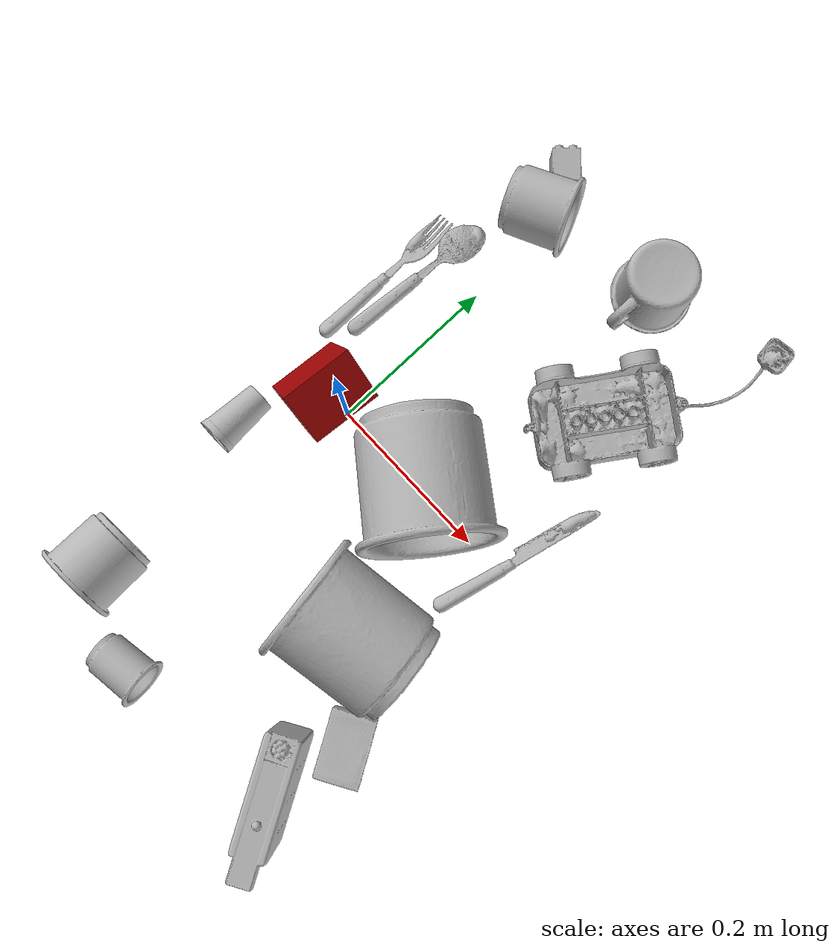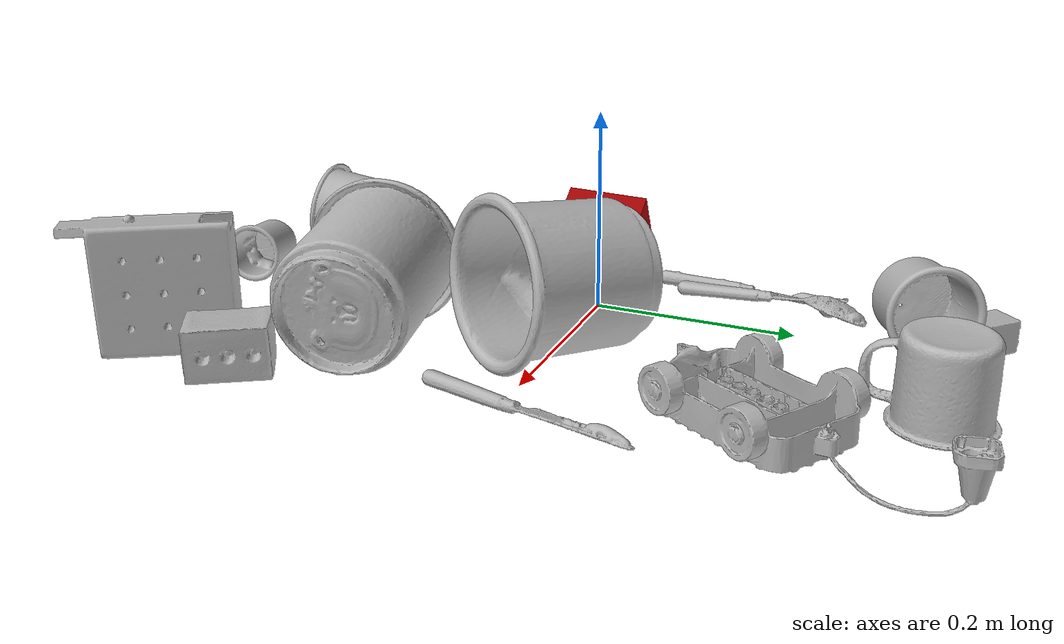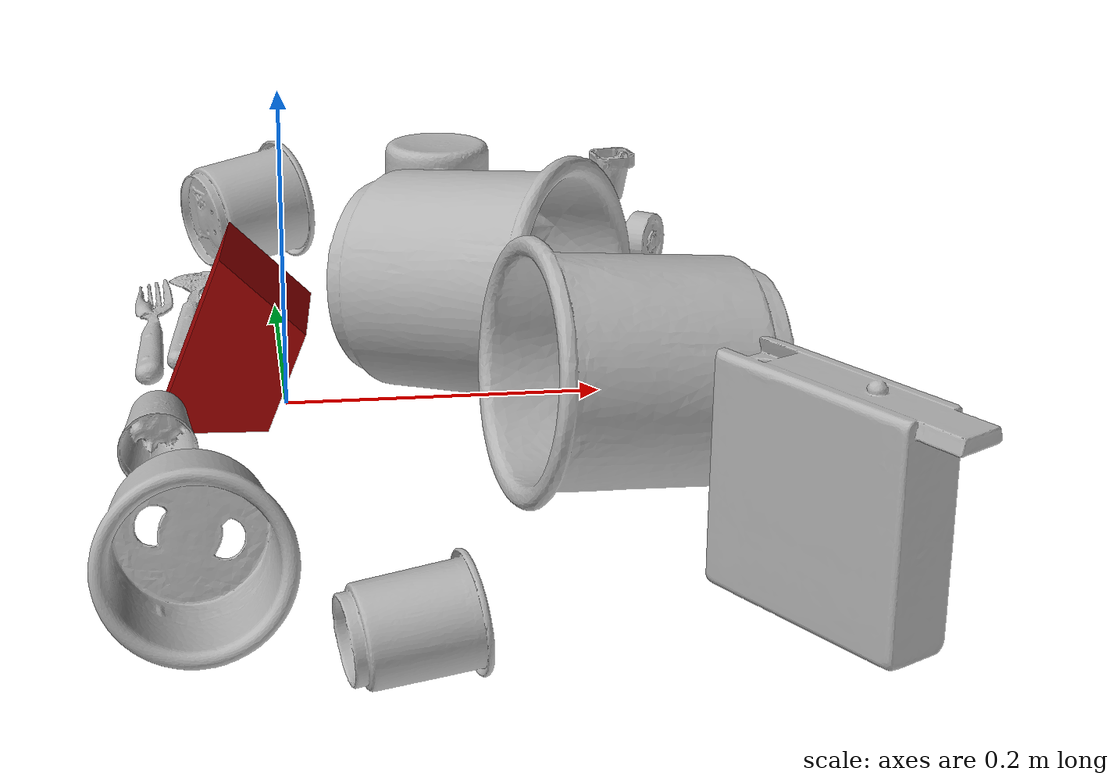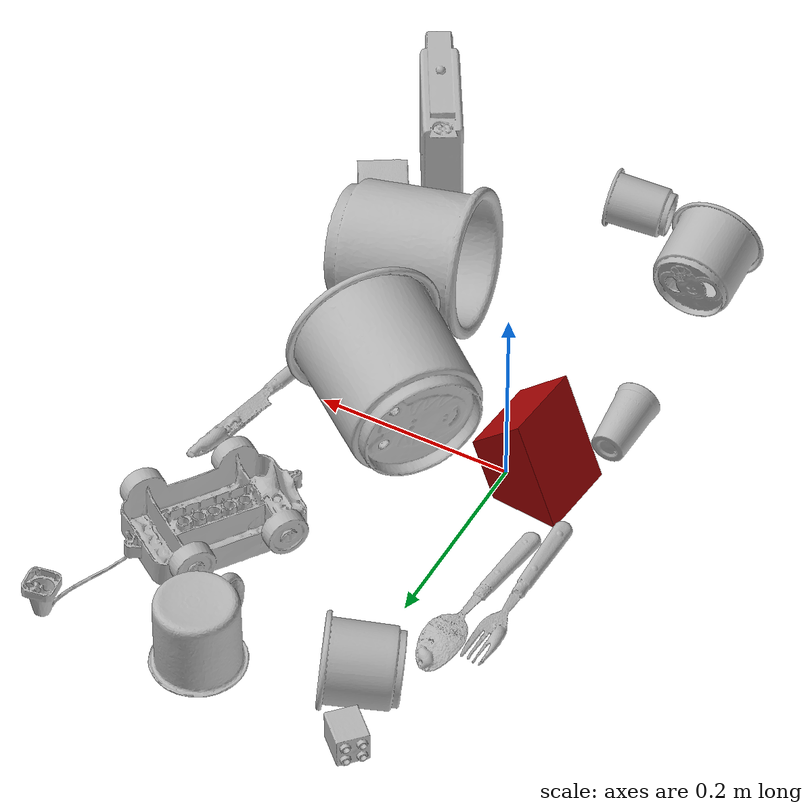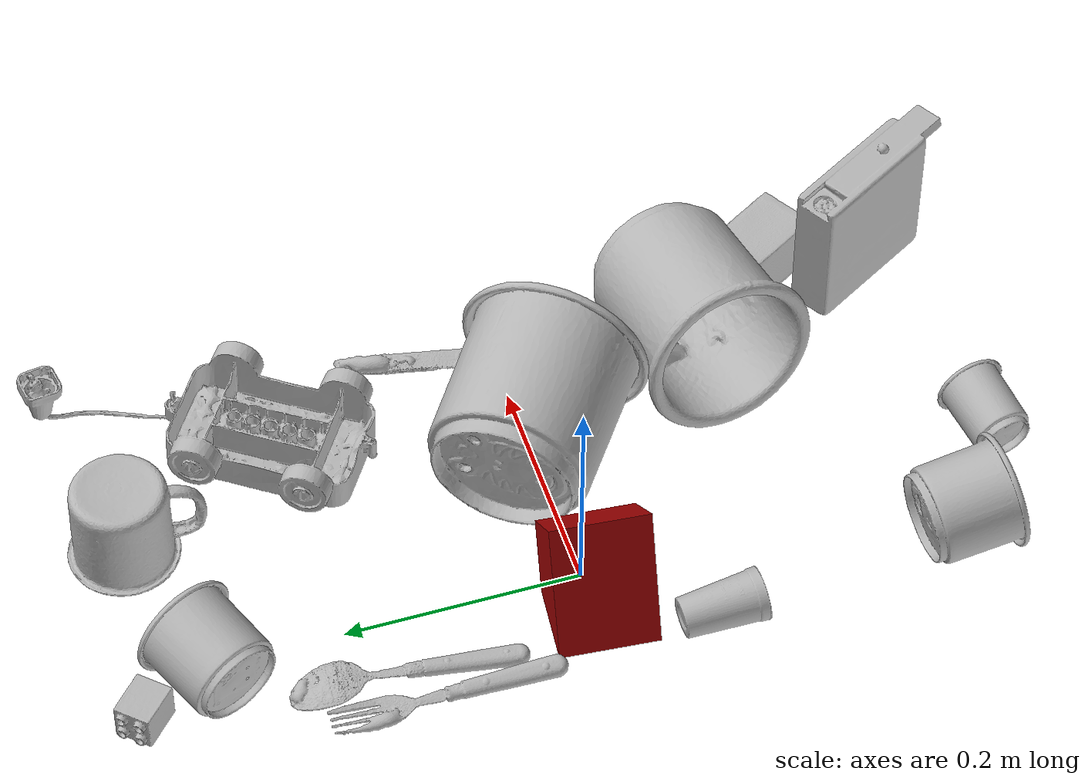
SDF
<sdf version="1.4">
  <world name="default">
    <light name="light1" type="point">
      <pose>0 0 1 0 0 0</pose>
      <diffuse>3 3 3 1</diffuse>
      <specular>3 3 3 1</specular>
    </light>
    <light name="light2" type="point">
      <pose>0 0.5 2 0 0 0</pose>
      <diffuse>1 1 1 1</diffuse>
      <specular>1 1 1 1</specular>
    </light>
    <light name="light3" type="point">
      <pose>0 0.5 2 0 0 0</pose>
      <diffuse>3 3 3 1</diffuse>
      <specular>3 3 3 1</specular>
    </light>
    <scene>
      <ambient>0.7 0.7 0.7</ambient>
    </scene>
    <model name="cup1">
      <link name="link_cup1">
        <collision name="default">
          <geometry>
            <mesh>
              <uri>model://i_cups/collision_meshes/collision.obj</uri>
              <scale>1.0 1.0 1.0</scale>
            </mesh>
          </geometry>
          <surface>
            <friction>
              <ode>
                <mu>0.5</mu>
                <mu2>0.5</mu2>
              </ode>
            </friction>
          <contact>
        <ode>
            <max_vel>0</max_vel>
            <min_depth>0.0001</min_depth>
            <kp>1e8</kp>
        </ode>
    </contact></surface>
        </collision>
        <visual name="default">
          <geometry>
            <mesh>
              <uri>model://i_cups/visual_meshes/visual.dae</uri>
              <scale>1.0 1.0 1.0</scale>
            </mesh>
          </geometry>
        </visual>
        <inertial>
          <mass>0.06118306145071983</mass>
          <pose>0.00011240330786677077 0.00016797454736661166 -0.0008579033892601728 -0.02898356853937009 -0.0398729445813228 -0.3459020996231002</pose>
          <inertia>
            <ixx>8.470886e-05</ixx>
            <iyy>8.5455235e-05</iyy>
            <izz>9.467588e-05</izz>
            <ixy>0</ixy>
            <ixz>0</ixz>
            <iyz>0</iyz>
          </inertia>
        </inertial>
      </link>
      <pose>-0.05655854195356369 -0.30815786123275757 0.04489682614803314 -1.432042043540996 -0.5665404648665953 3.109664526809763</pose>
    </model>
    <model name="silverware1">
      <link name="link_silverware1">
        <collision name="default">
          <geometry>
            <mesh>
              <uri>model://fork/collision_meshes/collision.obj</uri>
              <scale>1.0 1.0 1.0</scale>
            </mesh>
          </geometry>
          <surface>
            <friction>
              <ode>
                <mu>0.5</mu>
                <mu2>0.5</mu2>
              </ode>
            </friction>
          <contact>
        <ode>
            <max_vel>0</max_vel>
            <min_depth>0.0001</min_depth>
            <kp>1e8</kp>
        </ode>
    </contact></surface>
        </collision>
        <visual name="default">
          <geometry>
            <mesh>
              <uri>model://fork/visual_meshes/visual.dae</uri>
              <scale>1.0 1.0 1.0</scale>
            </mesh>
          </geometry>
        </visual>
        <inertial>
          <mass>0.031184576451778412</mass>
          <pose>-0.02957005426287651 0.00046588247641921043 0.0003218861820641905 -0.013551007459636681 -0.010977840933376642 0.014453907264632249</pose>
          <inertia>
            <ixx>1.0931959e-06</ixx>
            <iyy>8.1413935e-05</iyy>
            <izz>8.1902916e-05</izz>
            <ixy>0</ixy>
            <ixz>0</ixz>
            <iyz>0</iyz>
          </inertia>
        </inertial>
      </link>
      <pose>-0.08568906784057617 0.13750293850898743 0.005719705484807491 -0.1831390445326392 0.024721662242252387 1.5654490108577968</pose>
    </model>
    <model name="cup2">
      <link name="link_cup2">
        <collision name="default">
          <geometry>
            <mesh>
              <uri>model://cup_small/collision_meshes/collision.obj</uri>
              <scale>1.0 1.0 1.0</scale>
            </mesh>
          </geometry>
          <surface>
            <friction>
              <ode>
                <mu>0.5</mu>
                <mu2>0.5</mu2>
              </ode>
            </friction>
          <contact>
        <ode>
            <max_vel>0</max_vel>
            <min_depth>0.0001</min_depth>
            <kp>1e8</kp>
        </ode>
    </contact></surface>
        </collision>
        <visual name="default">
          <geometry>
            <mesh>
              <uri>model://cup_small/visual_meshes/visual.dae</uri>
              <scale>1.0 1.0 1.0</scale>
            </mesh>
          </geometry>
        </visual>
        <inertial>
          <mass>0.03407767415046692</mass>
          <pose>0.0001048250705935061 -0.00033778452780097723 -0.010742825455963612 -0.011493231776776816 -0.015280154496379641 -0.5058119732839097</pose>
          <inertia>
            <ixx>2.0064415e-05</ixx>
            <iyy>2.0167918e-05</iyy>
            <izz>9.059144e-06</izz>
            <ixy>0</ixy>
            <ixz>0</ixz>
            <iyz>0</iyz>
          </inertia>
        </inertial>
      </link>
      <pose>-0.0775802731513977 -0.09374670684337616 0.01956838369369507 -1.4753663216187263 0.3986207828163875 -3.0883032248373725</pose>
    </model>
    <model name="silverware2">
      <link name="link_silverware2">
        <collision name="default">
          <geometry>
            <mesh>
              <uri>model://spoon/collision_meshes/collision.obj</uri>
              <scale>1.0 1.0 1.0</scale>
            </mesh>
          </geometry>
          <surface>
            <friction>
              <ode>
                <mu>0.5</mu>
                <mu2>0.5</mu2>
              </ode>
            </friction>
          <contact>
        <ode>
            <max_vel>0</max_vel>
            <min_depth>0.0001</min_depth>
            <kp>1e8</kp>
        </ode>
    </contact></surface>
        </collision>
        <visual name="default">
          <geometry>
            <mesh>
              <uri>model://spoon/visual_meshes/visual.dae</uri>
              <scale>1.0 1.0 1.0</scale>
            </mesh>
          </geometry>
        </visual>
        <inertial>
          <mass>0.016614587977528572</mass>
          <pose>-0.005526317749172449 -0.0016034182626754045 -0.0007271657232195139 0.03521671066550848 -0.039065848782153245 0.0061506117821598484</pose>
          <inertia>
            <ixx>9.241303e-07</ixx>
            <iyy>6.321795e-05</iyy>
            <izz>6.367369e-05</izz>
            <ixy>0</ixy>
            <ixz>0</ixz>
            <iyz>0</iyz>
          </inertia>
        </inertial>
      </link>
      <pose>-0.057077206671237946 0.16295504570007324 0.010132850147783756 3.1052816832024575 -0.06198914542724366 1.495487524220881</pose>
    </model>
    <model name="cup3">
      <link name="link_cup3">
        <collision name="default">
          <geometry>
            <mesh>
              <uri>model://mug/collision_meshes/collision.obj</uri>
              <scale>1.0 1.0 1.0</scale>
            </mesh>
          </geometry>
          <surface>
            <friction>
              <ode>
                <mu>0.5</mu>
                <mu2>0.5</mu2>
              </ode>
            </friction>
          <contact>
        <ode>
            <max_vel>0</max_vel>
            <min_depth>0.0001</min_depth>
            <kp>1e8</kp>
        </ode>
    </contact></surface>
        </collision>
        <visual name="default">
          <geometry>
            <mesh>
              <uri>model://mug/visual_meshes/visual.dae</uri>
              <scale>1.0 1.0 1.0</scale>
            </mesh>
          </geometry>
        </visual>
        <inertial>
          <mass>0.2187051922082901</mass>
          <pose>0.009571668691933155 0.0008143252925947309 -0.0109473317861557 -0.1298317614392908 0.08737757629698793 0.05507296169044089</pose>
          <inertia>
            <ixx>0.00021724429</ixx>
            <iyy>0.00024264908</iyy>
            <izz>0.00028062687</izz>
            <ixy>0</ixy>
            <ixz>0</ixz>
            <iyz>0</iyz>
          </inertia>
        </inertial>
      </link>
      <pose>0.1335987150669098 0.33646368980407715 0.04095800966024399 3.141592641115866 -5.995638626187111e-07 1.5377097831086477</pose>
    </model>
    <model name="silverware3">
      <link name="link_silverware3">
        <collision name="default">
          <geometry>
            <mesh>
              <uri>model://knife/collision_meshes/collision.obj</uri>
              <scale>1.0 1.0 1.0</scale>
            </mesh>
          </geometry>
          <surface>
            <friction>
              <ode>
                <mu>0.5</mu>
                <mu2>0.5</mu2>
              </ode>
            </friction>
          <contact>
        <ode>
            <max_vel>0</max_vel>
            <min_depth>0.0001</min_depth>
            <kp>1e8</kp>
        </ode>
    </contact></surface>
        </collision>
        <visual name="default">
          <geometry>
            <mesh>
              <uri>model://knife/visual_meshes/visual.dae</uri>
              <scale>1.0 1.0 1.0</scale>
            </mesh>
          </geometry>
        </visual>
        <inertial>
          <mass>0.02527560666203499</mass>
          <pose>-0.02378525398671627 0.0015275124460458755 5.062016498413868e-05 0.07305987488321217 0.01724841707462807 -0.007409821427235137</pose>
          <inertia>
            <ixx>7.174241e-07</ixx>
            <iyy>9.710476e-05</iyy>
            <izz>9.733581e-05</izz>
            <ixy>0</ixy>
            <ixz>0</ixz>
            <iyz>0</iyz>
          </inertia>
        </inertial>
      </link>
      <pose>0.24929647147655487 0.026681803166866302 0.0058107017539441586 2.8893476711065906 0.02591439632913055 1.3552639073646304</pose>
    </model>
    <model name="cup4">
      <link name="link_cup4">
        <collision name="default">
          <geometry>
            <mesh>
              <uri>model://f_cups/collision_meshes/collision.obj</uri>
              <scale>2.0 2.0 2.0</scale>
            </mesh>
          </geometry>
          <surface>
            <friction>
              <ode>
                <mu>0.5</mu>
                <mu2>0.5</mu2>
              </ode>
            </friction>
          <contact>
        <ode>
            <max_vel>0</max_vel>
            <min_depth>0.0001</min_depth>
            <kp>1e8</kp>
        </ode>
    </contact></surface>
        </collision>
        <visual name="default">
          <geometry>
            <mesh>
              <uri>model://f_cups/visual_meshes/visual.dae</uri>
              <scale>2.0 2.0 2.0</scale>
            </mesh>
          </geometry>
        </visual>
        <inertial>
          <mass>0.45639780163764954</mass>
          <pose>-0.006342936772853136 -0.0012480145087465644 -0.007311072666198015 0.7862311529960513 -0.2607925047248709 -0.18237200478465204</pose>
          <inertia>
            <ixx>0.0017161043</ixx>
            <iyy>0.0018002132</iyy>
            <izz>0.0018740727</izz>
            <ixy>0</ixy>
            <ixz>0</ixz>
            <iyz>0</iyz>
          </inertia>
        </inertial>
      </link>
      <pose>0.12094824016094208 0.005696505308151245 0.07424798607826233 1.3471996735720724 -1.1365035266374734 1.1431443477285013</pose>
    </model>
    <model name="cup41">
      <link name="link_cup41">
        <collision name="default">
          <geometry>
            <mesh>
              <uri>model://b_cups/collision_meshes/collision.obj</uri>
              <scale>1.0 1.0 1.0</scale>
            </mesh>
          </geometry>
          <surface>
            <friction>
              <ode>
                <mu>0.5</mu>
                <mu2>0.5</mu2>
              </ode>
            </friction>
          <contact>
        <ode>
            <max_vel>0</max_vel>
            <min_depth>0.0001</min_depth>
            <kp>1e8</kp>
        </ode>
    </contact></surface>
        </collision>
        <visual name="default">
          <geometry>
            <mesh>
              <uri>model://b_cups/visual_meshes/visual.dae</uri>
              <scale>1.0 1.0 1.0</scale>
            </mesh>
          </geometry>
        </visual>
        <inertial>
          <mass>0.02191556617617607</mass>
          <pose>0.0005182005115784705 0.0018058598507195711 -0.0013381809694692492 0.11356347292067202 0.038725069075056226 -0.34569439603942165</pose>
          <inertia>
            <ixx>1.4345273e-05</ixx>
            <iyy>1.4072923e-05</iyy>
            <izz>1.2071279e-05</izz>
            <ixy>0</ixy>
            <ixz>0</ixz>
            <iyz>0</iyz>
          </inertia>
        </inertial>
      </link>
      <pose>0.042252279818058014 -0.36946213245391846 0.027630075812339783 -1.4758481008175934 -0.14125091819180952 -1.4231273974754413</pose>
    </model>
    <model name="cup5">
      <link name="link_cup5">
        <collision name="default">
          <geometry>
            <mesh>
              <uri>model://e_cups/collision_meshes/collision.obj</uri>
              <scale>2.0 2.0 2.0</scale>
            </mesh>
          </geometry>
          <surface>
            <friction>
              <ode>
                <mu>0.5</mu>
                <mu2>0.5</mu2>
              </ode>
            </friction>
          <contact>
        <ode>
            <max_vel>0</max_vel>
            <min_depth>0.0001</min_depth>
            <kp>1e8</kp>
        </ode>
    </contact></surface>
        </collision>
        <visual name="default">
          <geometry>
            <mesh>
              <uri>model://e_cups/visual_meshes/visual.dae</uri>
              <scale>2.0 2.0 2.0</scale>
            </mesh>
          </geometry>
        </visual>
        <inertial>
          <mass>0.30448246002197266</mass>
          <pose>0.0022711469791829586 0.005759572610259056 -0.00776594178751111 0.6952384510578399 0.08767941436067322 -0.5235260729612989</pose>
          <inertia>
            <ixx>0.0010739095</ixx>
            <iyy>0.001122389</iyy>
            <izz>0.0010267813</izz>
            <ixy>0</ixy>
            <ixz>0</ixz>
            <iyz>0</iyz>
          </inertia>
        </inertial>
      </link>
      <pose>0.1908218115568161 -0.1591879427433014 0.07028830796480179 -1.3886769498051557 -1.0663068123769224 1.572511152121227</pose>
    </model>
    <model name="cup51">
      <link name="link_cup51">
        <collision name="default">
          <geometry>
            <mesh>
              <uri>model://h_cups/collision_meshes/collision.obj</uri>
              <scale>1.0 1.0 1.0</scale>
            </mesh>
          </geometry>
          <surface>
            <friction>
              <ode>
                <mu>0.5</mu>
                <mu2>0.5</mu2>
              </ode>
            </friction>
          <contact>
        <ode>
            <max_vel>0</max_vel>
            <min_depth>0.0001</min_depth>
            <kp>1e8</kp>
        </ode>
    </contact></surface>
        </collision>
        <visual name="default">
          <geometry>
            <mesh>
              <uri>model://h_cups/visual_meshes/visual.dae</uri>
              <scale>1.0 1.0 1.0</scale>
            </mesh>
          </geometry>
        </visual>
        <inertial>
          <mass>0.042455922812223434</mass>
          <pose>-2.703044083318673e-05 0.00023018660431262106 -0.0018405403243377805 -0.024361995264993386 0.06545231449212868 0.1288536550905752</pose>
          <inertia>
            <ixx>5.4829856e-05</ixx>
            <iyy>5.4175573e-05</iyy>
            <izz>5.7501496e-05</izz>
            <ixy>0</ixy>
            <ixz>0</ixz>
            <iyz>0</iyz>
          </inertia>
        </inertial>
      </link>
      <pose>-0.017699653282761574 0.31298550963401794 0.04229024052619934 1.4655516711441445 0.0882937160546879 1.9936399191892213</pose>
    </model>
    <model name="toy1">
      <link name="link_toy1">
        <collision name="default">
          <geometry>
            <mesh>
              <uri>model://f_lego_duplo/collision_meshes/collision.obj</uri>
              <scale>1.0 1.0 1.0</scale>
            </mesh>
          </geometry>
          <surface>
            <friction>
              <ode>
                <mu>0.5</mu>
                <mu2>0.5</mu2>
              </ode>
            </friction>
          <contact>
        <ode>
            <max_vel>0</max_vel>
            <min_depth>0.0001</min_depth>
            <kp>1e8</kp>
        </ode>
    </contact></surface>
        </collision>
        <visual name="default">
          <geometry>
            <mesh>
              <uri>model://f_lego_duplo/visual_meshes/visual.dae</uri>
              <scale>1.0 1.0 1.0</scale>
            </mesh>
          </geometry>
        </visual>
        <inertial>
          <mass>0.02241816557943821</mass>
          <pose>2.3694117771810852e-05 0.0001339316659141332 0.0018837875686585903 0.029838520561624126 -0.014425134948969536 -0.6756620822172864</pose>
          <inertia>
            <ixx>4.7370827e-06</ixx>
            <iyy>4.779284e-06</iyy>
            <izz>4.1119874e-06</izz>
            <ixy>0</ixy>
            <ixz>0</ixz>
            <iyz>0</iyz>
          </inertia>
        </inertial>
      </link>
      <pose>-0.037614207714796066 0.3749968111515045 0.016363998875021935 1.251442599147261 -1.5707938898411058 -2.0040259407274377</pose>
    </model>
    <model name="toy2">
      <link name="link_toy2">
        <collision name="default">
          <geometry>
            <mesh>
              <uri>model://nine_hole_peg_test/collision_meshes/collision.obj</uri>
              <scale>1.0 1.0 1.0</scale>
            </mesh>
          </geometry>
          <surface>
            <friction>
              <ode>
                <mu>0.5</mu>
                <mu2>0.5</mu2>
              </ode>
            </friction>
          <contact>
        <ode>
            <max_vel>0</max_vel>
            <min_depth>0.0001</min_depth>
            <kp>1e8</kp>
        </ode>
    </contact></surface>
        </collision>
        <visual name="default">
          <geometry>
            <mesh>
              <uri>model://nine_hole_peg_test/visual_meshes/visual.dae</uri>
              <scale>1.0 1.0 1.0</scale>
            </mesh>
          </geometry>
        </visual>
        <inertial>
          <mass>0.9336897134780884</mass>
          <pose>-0.004617386497557163 -0.009647615253925323 2.6460686058271676e-05 -0.0014666796876693252 0.0007194179493738156 -0.6342417556307235</pose>
          <inertia>
            <ixx>0.0014599775</ixx>
            <iyy>0.0013631656</iyy>
            <izz>0.0025583105</izz>
            <ixy>0</ixy>
            <ixz>0</ixz>
            <iyz>0</iyz>
          </inertia>
        </inertial>
      </link>
      <pose>0.25515830516815186 -0.33900773525238037 0.06863490492105484 -1.6631321420313625 -1.5635946476268952 -0.9483020545195814</pose>
    </model>
    <model name="toy3">
      <link name="link_toy3">
        <collision name="default">
          <geometry>
            <mesh>
              <uri>model://prism/collision_meshes/collision.obj</uri>
              <scale>1.0 1.0 1.0</scale>
            </mesh>
          </geometry>
          <surface>
            <friction>
              <ode>
                <mu>0.5</mu>
                <mu2>0.5</mu2>
              </ode>
            </friction>
          <contact>
        <ode>
            <max_vel>0</max_vel>
            <min_depth>0.0001</min_depth>
            <kp>1e8</kp>
        </ode>
    </contact></surface>
        </collision>
        <visual name="default">
          <geometry>
            <mesh>
              <uri>model://prism/visual_meshes/visual.dae</uri>
              <scale>1.0 1.0 1.0</scale>
            </mesh>
          </geometry>
        </visual>
        <inertial>
          <mass>0.45664992928504944</mass>
          <pose>-9.85359656624496e-05 -4.96157269935793e-07 -0.0033869100734591484 0.0 0.006559178903460961 0.0</pose>
          <inertia>
            <ixx>0.0004121209</ixx>
            <iyy>0.00049805344</iyy>
            <izz>0.0006100559</izz>
            <ixy>0</ixy>
            <ixz>0</ixz>
            <iyz>0</iyz>
          </inertia>
        </inertial>
      </link>
      <pose>-0.026799025014042854 -0.004300301428884268 0.04270409420132637 -3.1415925580256707 -1.194137835335173 -0.08805427604791445</pose>
    </model>
    <model name="toy4">
      <link name="link_toy4">
        <collision name="default">
          <geometry>
            <mesh>
              <uri>model://g_lego_duplo/collision_meshes/collision.obj</uri>
              <scale>1.0 1.0 1.0</scale>
            </mesh>
          </geometry>
          <surface>
            <friction>
              <ode>
                <mu>0.5</mu>
                <mu2>0.5</mu2>
              </ode>
            </friction>
          <contact>
        <ode>
            <max_vel>0</max_vel>
            <min_depth>0.0001</min_depth>
            <kp>1e8</kp>
        </ode>
    </contact></surface>
        </collision>
        <visual name="default">
          <geometry>
            <mesh>
              <uri>model://g_lego_duplo/visual_meshes/visual.dae</uri>
              <scale>1.0 1.0 1.0</scale>
            </mesh>
          </geometry>
        </visual>
        <inertial>
          <mass>0.39620378613471985</mass>
          <pose>-0.05004769191145897 0.0017554654041305184 0.003880677744746208 0.010963058510667364 0.03810828654928447 -0.09653021192595126</pose>
          <inertia>
            <ixx>0.0005741041</ixx>
            <iyy>0.0017357017</iyy>
            <izz>0.0021714251</izz>
            <ixy>0</ixy>
            <ixz>0</ixz>
            <iyz>0</iyz>
          </inertia>
        </inertial>
      </link>
      <pose>0.2319205105304718 0.2570522427558899 0.027629006654024124 -3.141591803927958 -0.030279543056379626 0.9861456393108082</pose>
    </model>
    <model name="toy5">
      <link name="link_toy5">
        <collision name="default">
          <geometry>
            <mesh>
              <uri>model://foam_brick/collision_meshes/collision.obj</uri>
              <scale>1.0 1.0 1.0</scale>
            </mesh>
          </geometry>
          <surface>
            <friction>
              <ode>
                <mu>0.5</mu>
                <mu2>0.5</mu2>
              </ode>
            </friction>
          <contact>
        <ode>
            <max_vel>0</max_vel>
            <min_depth>0.0001</min_depth>
            <kp>1e8</kp>
        </ode>
    </contact></surface>
        </collision>
        <visual name="default">
          <geometry>
            <mesh>
              <uri>model://foam_brick/visual_meshes/visual.dae</uri>
              <scale>1.0 1.0 1.0</scale>
            </mesh>
          </geometry>
        </visual>
        <inertial>
          <mass>0.10564772039651871</mass>
          <pose>-0.00025224717683158815 0.00034584361128509045 -0.00025321010616607964 -0.29402271699624904 0.017274444128295662 -0.0007449905040366932</pose>
          <inertia>
            <ixx>4.6148893e-05</ixx>
            <iyy>7.367908e-05</iyy>
            <izz>7.4615455e-05</izz>
            <ixy>0</ixy>
            <ixz>0</ixz>
            <iyz>0</iyz>
          </inertia>
        </inertial>
      </link>
      <pose>0.27140846848487854 -0.2491661161184311 0.025910701602697372 1.5828206613274929 -0.0003754966776243593 2.113127454658193</pose>
    </model>
  <physics type="ode">
      <max_contacts>50</max_contacts>
      <ode>
        <solver>
          <type>quick</type>
          <iters>75</iters>
        </solver>
        <constraints>
          <contact_max_correcting_vel>0</contact_max_correcting_vel>
          <contact_surface_layer>0</contact_surface_layer>
        </constraints>
      </ode>
    </physics></world>
</sdf>
